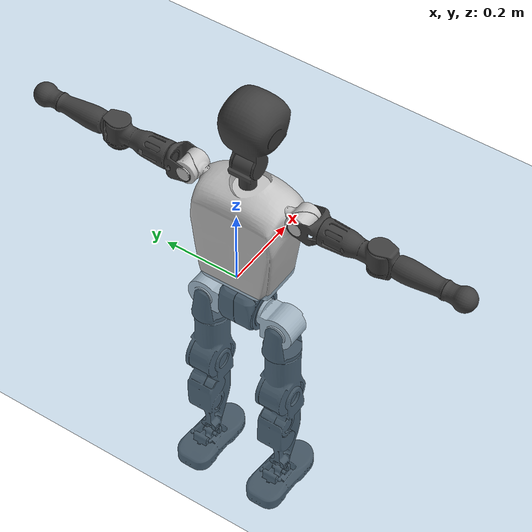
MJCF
<mujoco model="T1">
  <compiler angle="radian" assetdir="assets" balanceinertia="true" inertiafromgeom="false"/>

  <option timestep="0.005" density="1.2" viscosity="2e-05"/>

  <size nkey="1"/>

  <visual>
    <quality shadowsize="8192"/>
    <map shadowclip="0.5"/>
  </visual>

  <default>
    <default class="/">
      <joint armature="0.01" damping="0.01" frictionloss="0.1"/>
      <geom contype="0" conaffinity="0" group="1" solref="-1000 -80"/>
      <site size="0.01 0.005 0.005" group="5"/>
      <general forcelimited="true" biastype="affine" gainprm="25" biasprm="0 -25 -0.6"/>
      <default class="t1">
        <geom rgba="0.25 0.25 0.25 1"/>
        <default class="visual">
          <geom type="mesh" group="2"/>
        </default>
        <default class="collision">
          <geom group="3"/>
        </default>
        <default class="foot">
          <geom size="0.1115 0.05 0.015" type="box" condim="6" group="4" priority="1" solimp="0.015 1 0.015"/>
        </default>
        <default class="reward_collision_sphere">
          <geom group="5" rgba="1 0 0 1"/>
        </default>
      </default>
    </default>
  </default>

  <asset>
    <texture type="skybox" colorspace="auto" name="//unnamed_texture_0" builtin="gradient" rgb1="0.95 0.95 0.95" rgb2="0.95 0.95 0.95" width="100" height="600"/>
    <texture type="2d" colorspace="auto" name="texplane" builtin="checker" rgb1="0.345 0.575 0.748" rgb2="0.345 0.575 0.748" markrgb="1 1 1" width="512" height="512"/>
    <material name="MatPlane" class="/" texture="texplane" texuniform="true" texrepeat="2 2" specular="0.9"/>
    <mesh name="Trunk" class="/" file="Trunk.stl"/>
    <mesh name="H1" class="/" file="H1.stl"/>
    <mesh name="H2" class="/" file="H2.stl"/>
    <mesh name="AL1" class="/" file="AL1.stl"/>
    <mesh name="AL2" class="/" file="AL2.stl"/>
    <mesh name="AL3" class="/" file="AL3.stl"/>
    <mesh name="left_hand_link" class="/" file="left_hand_link.stl"/>
    <mesh name="AR1" class="/" file="AR1.stl"/>
    <mesh name="AR2" class="/" file="AR2.stl"/>
    <mesh name="AR3" class="/" file="AR3.stl"/>
    <mesh name="right_hand_link" class="/" file="right_hand_link.stl"/>
    <mesh name="Waist" class="/" file="Waist.stl"/>
    <mesh name="Hip_Pitch_Left" class="/" file="Hip_Pitch_Left.stl"/>
    <mesh name="Hip_Roll_Left" class="/" file="Hip_Roll_Left.stl"/>
    <mesh name="Hip_Yaw_Left" class="/" file="Hip_Yaw_Left.stl"/>
    <mesh name="Shank_Left" class="/" file="Shank_Left.stl"/>
    <mesh name="Ankle_Cross_Left" class="/" file="Ankle_Cross_Left.stl"/>
    <mesh name="left_foot_link" class="/" file="left_foot_link.stl"/>
    <mesh name="Hip_Pitch_Right" class="/" file="Hip_Pitch_Right.stl"/>
    <mesh name="Hip_Roll_Right" class="/" file="Hip_Roll_Right.stl"/>
    <mesh name="Hip_Yaw_Right" class="/" file="Hip_Yaw_Right.stl"/>
    <mesh name="Shank_Right" class="/" file="Shank_Right.stl"/>
    <mesh name="Ankle_Cross_Right" class="/" file="Ankle_Cross_Right.stl"/>
    <mesh name="right_foot_link" class="/" file="right_foot_link.stl"/>
  </asset>

  <worldbody>
    <geom name="floor" class="/" size="100 100 0.125" type="plane" group="0" material="MatPlane"/>
    <light name="toplight_shadow" class="/" pos="0 0 5" dir="0.0990148 0.0990148 -0.990148" type="directional" ambient="0.04 0.04 0.04" diffuse="0.55 0.55 0.55" specular="0.12 0.12 0.12"/>
    <light name="toplight_fill" class="/" pos="0 0 5" dir="0.0990148 0.0990148 -0.990148" type="directional" castshadow="false" ambient="0.04 0.04 0.04" diffuse="0.3 0.3 0.3" specular="0.08 0.08 0.08"/>
    <body name="trunk" childclass="t1" pos="0.000276935 0.00168421 -0.00270684" quat="0.999999 0.00125427 -0.000408832 8.33631e-05">
      <inertial pos="0.0400864 -0.000417037 0.115611" quat="0.99996 0.000171074 -0.00894718 -7.78001e-05" mass="9.35491" diaginertia="0.0188786 0.0706031 0.0863321"/>
      <joint name="//unnamed_joint_0" type="free" armature="0" damping="0" frictionloss="0"/>
      <geom name="//unnamed_geom_1" class="visual" rgba="0.76 0.76 0.76 1" mesh="Trunk"/>
      <geom name="//unnamed_geom_2" class="collision" size="0.0706042 0.094139 0.141208" pos="0.0441008 0 0.132196" type="box"/>
      <geom name="//unnamed_geom_3" class="reward_collision_sphere" size="0.10826" pos="0.0441008 0 0.110164"/>
      <geom name="//unnamed_geom_4" class="reward_collision_sphere" size="0.0141208" pos="0.0441008 0.0839391 0"/>
      <geom name="//unnamed_geom_5" class="reward_collision_sphere" size="0.0141208" pos="0.0441008 -0.0839391 0"/>
      <geom name="//unnamed_geom_6" class="reward_collision_sphere" size="0.0141208" pos="0.0441008 0.105664 0.198295"/>
      <geom name="//unnamed_geom_7" class="reward_collision_sphere" size="0.0141208" pos="0.0441008 -0.105664 0.198295"/>
      <site name="imu" pos="-0.0135429 0.00174666 -0.000810212" size="0.0094139"/>
      <camera name="track" pos="0 -1.97504 0" quat="0.707107 0.707107 0 0" mode="trackcom"/>
      <camera name="ego_camera" pos="0.0896717 0 0.462687" quat="-0.5 -0.5 0.5 0.5"/>
      <body name="H1" pos="0.0466103 -0.000138521 0.269045" quat="0.999999 0.00029745 0.000777649 -0.00113367">
        <inertial pos="0.000986188 -0.00108528 0.0622787" quat="0.763744 -0.0139997 0.00259231 0.645362" mass="0.373006" diaginertia="5.1771e-05 0.000213972 0.000234304"/>
        <joint name="AAHead_yaw" pos="0 0 0" axis="0.000246336 0.000309721 1" range="-1.62234 1.58752" armature="0.00933515" damping="0.00398904" frictionloss="0.0936001"/>
        <geom name="//unnamed_geom_8" class="visual" mesh="H1"/>
        <body name="H2" pos="0.000187715 -0.00104569 0.0697554" quat="0.999999 -1.68998e-05 -0.00132793 -0.000356432">
          <inertial pos="0.00500051 7.98059e-05 0.108761" quat="0.988461 0.106031 -0.0747301 -0.0782134" mass="0.508286" diaginertia="0.000425084 0.00175463 0.00278805"/>
          <joint name="Head_pitch" pos="0 0 0" axis="-0.0014718 -0.999903 0.0138744" range="-1.26604 0.40405" armature="0.0106738" damping="0.0193581" frictionloss="0.106768"/>
          <geom name="//unnamed_geom_9" class="visual" mesh="H2"/>
          <geom name="//unnamed_geom_10" class="collision" size="0.0753112" pos="0.00735014 0 0.12118"/>
          <geom name="//unnamed_geom_11" class="reward_collision_sphere" size="0.0847251" pos="0.0147003 0 0.110164"/>
        </body>
      </body>
      <body name="AL1" pos="0.045781 0.107196 0.243079" quat="1 7.75037e-05 0.000634466 -0.000218296">
        <inertial pos="-0.00326628 0.0439373 -0.00079346" quat="0.511888 0.487912 -0.503745 0.496139" mass="0.434729" diaginertia="0.000285058 0.00123121 0.000468095"/>
        <joint name="Left_Shoulder_Pitch" pos="0 0 0" axis="0.000304311 1 -0.000481355" stiffness="0.00205322" range="-3.29469 1.22223" armature="0.00963004" damping="0.0142107" frictionloss="0.0937827"/>
        <geom name="//unnamed_geom_12" class="visual" rgba="0.76 0.76 0.76 1" mesh="AL1"/>
        <body name="AL2" pos="-6.54471e-05 0.0484982 -0.00278296" quat="0.999999 -0.000118522 -0.000711904 0.00113465">
          <inertial pos="0.00309485 0.0366915 -0.00281668" quat="0.487869 0.510868 -0.48821 0.512492" mass="0.137987" diaginertia="8.73957e-05 0.000319364 0.0002844"/>
          <joint name="Left_Shoulder_Roll" pos="0 0 0" axis="-0.999922 0.00508481 -0.0113734" range="-1.56741 1.75976" armature="0.00894751" damping="0.00430882" frictionloss="0.081382"/>
          <geom name="//unnamed_geom_13" class="visual" mesh="AL2"/>
          <body name="AL3" pos="-0.00204998 0.0588603 0.00143346" quat="1 0.000147559 0.000352615 0.000109478">
            <inertial pos="0.000759937 0.0842528 0.00246494" quat="0.707384 0.706829 -0.000680257 -0.000514843" mass="0.846919" diaginertia="0.00277374 0.0120256 0.000995704"/>
            <joint name="Left_Elbow_Pitch" pos="0 0 0" axis="0.0133248 -0.999911 0.000182802" range="-2.29294 2.26729" armature="0.00972822" damping="0.00462095" frictionloss="0.0948042"/>
            <geom name="//unnamed_geom_14" class="visual" mesh="AL3"/>
            <geom name="//unnamed_geom_15" class="collision" size="0.0282417 0.0706042" pos="0 0.0493759 0" quat="0.707105 0.707108 0 0" type="cylinder"/>
            <geom name="//unnamed_geom_16" class="reward_collision_sphere" size="0.03389"/>
            <body name="left_hand_link" pos="-0.00135378 0.143036 0.00297164" quat="1 -1.06831e-05 -0.00013016 7.52452e-05">
              <inertial pos="9.96616e-05 0.108737 0.00265415" quat="0.709064 0.705142 0.00179792 0.000630328" mass="0.281295" diaginertia="0.00174769 0.00807047 0.000360579"/>
              <joint name="Left_Elbow_Yaw" pos="0 0 0" axis="0.00705548 -0.0138434 0.999879" range="-2.45783 0.0152825" armature="0.00881492" damping="0.0131647" frictionloss="0.10166"/>
              <geom name="//unnamed_geom_17" class="visual" mesh="left_hand_link"/>
              <geom name="//unnamed_geom_18" class="collision" size="0.0282417 0.0823716" pos="0 0.128377 0" quat="0.707105 0.707108 0 0" type="cylinder"/>
              <geom name="//unnamed_geom_19" class="reward_collision_sphere" size="0.0470695"/>
              <geom name="//unnamed_geom_20" class="reward_collision_sphere" size="0.0329486" pos="0 0.108627 0"/>
              <geom name="//unnamed_geom_21" class="reward_collision_sphere" size="0.0329486" pos="0 0.212317 0"/>
            </body>
          </body>
        </body>
      </body>
      <body name="AR1" pos="0.0442618 -0.10558 0.244009" quat="0.999999 -1.04104e-05 0.00162889 0.000347028">
        <inertial pos="-0.000390461 -0.0451714 -0.00106804" quat="0.505747 0.493527 -0.503839 0.496787" mass="0.441046" diaginertia="0.000285411 0.00121805 0.000475035"/>
        <joint name="Right_Shoulder_Pitch" pos="0 0 0" axis="-0.00183099 -0.999998 0.000267839" range="-1.22531 3.34269" armature="0.00977466" damping="0" frictionloss="0.091927"/>
        <geom name="//unnamed_geom_22" class="visual" rgba="0.76 0.76 0.76 1" mesh="AR1"/>
        <body name="AR2" pos="-0.00058789 -0.0460353 -9.03716e-05" quat="1 -0.000910014 4.17603e-05 -1.00391e-05">
          <inertial pos="0.00272058 -0.037533 0.00238378" quat="0.511032 0.486301 -0.512051 0.490062" mass="0.128846" diaginertia="8.86912e-05 0.000327317 0.000276577"/>
          <joint name="Right_Shoulder_Roll" pos="0 0 0" axis="-0.999961 -0.00421485 0.00774802" range="-1.75728 1.56772" armature="0.00943433" damping="0.00986296" frictionloss="0.106503"/>
          <geom name="//unnamed_geom_23" class="visual" mesh="AR2"/>
          <body name="AR3" pos="-0.00143908 -0.0572303 0.000143451" quat="1 7.48322e-05 -0.000307605 0.000202755">
            <inertial pos="-0.00301385 -0.083773 -0.00103473" quat="0.714165 0.699962 -0.00293533 0.0034504" mass="0.87025" diaginertia="0.00268382 0.0115404 0.00100475"/>
            <joint name="Right_Elbow_Pitch" pos="0 0 0" axis="-0.00259383 0.999991 0.00325615" range="-2.27319 2.24972" armature="0.00821218" damping="0.0033931" frictionloss="0.0958327"/>
            <geom name="//unnamed_geom_24" class="visual" mesh="AR3"/>
            <geom name="//unnamed_geom_25" class="collision" size="0.0282417 0.0706042" pos="0 -0.0493759 0" quat="0.707105 0.707108 0 0" type="cylinder"/>
            <geom name="//unnamed_geom_26" class="reward_collision_sphere" size="0.03389"/>
            <body name="right_hand_link" pos="-0.000422728 -0.145648 0.00264821" quat="1 1.1599e-06 3.20248e-06 1.7363e-06">
              <inertial pos="-0.00197154 -0.105778 0.00166176" quat="0.705685 0.708517 -0.0019489 0.0029385" mass="0.271824" diaginertia="0.00173269 0.00758631 0.000348765"/>
              <joint name="Right_Elbow_Yaw" pos="0 0 0" axis="-0.00433255 0.00319815 0.999986" range="0.00344579 2.44159" armature="0.0096132" damping="0.00756299" frictionloss="0.09478"/>
              <geom name="//unnamed_geom_27" class="visual" mesh="right_hand_link"/>
              <geom name="//unnamed_geom_28" class="collision" size="0.0282417 0.0823716" pos="0 -0.128377 0" quat="0.707105 0.707108 0 0" type="cylinder"/>
              <geom name="//unnamed_geom_29" class="reward_collision_sphere" size="0.0470695"/>
              <geom name="//unnamed_geom_30" class="reward_collision_sphere" size="0.0329486" pos="0 -0.108627 0"/>
              <geom name="//unnamed_geom_31" class="reward_collision_sphere" size="0.0329486" pos="0 -0.212317 0"/>
            </body>
          </body>
        </body>
      </body>
      <body name="Waist" pos="0.0479379 0.000722217 -0.125387" quat="1 -0.000182082 -1.50609e-05 8.38541e-05">
        <inertial pos="0.00310858 0.000206544 0.00825622" quat="0.98325 0.000611384 -0.182257 0.00120415" mass="2.13073" diaginertia="0.0011151 0.005076 0.0074636"/>
        <joint name="Waist" pos="0 0 0" axis="-0.00346696 0.00512894 0.999981" range="-1.61284 1.58773" armature="0.00943476" damping="0" frictionloss="0.095652"/>
        <geom name="//unnamed_geom_32" class="visual" mesh="Waist"/>
        <body name="Hip_Pitch_Left" pos="-0.00017225 0.107261 0.00273585" quat="1 9.79766e-06 -8.34147e-06 -6.87441e-06">
          <inertial pos="-0.000634917 -0.00715681 -0.0227418" quat="0.974438 0.224387 0.0108637 0.00146844" mass="0.882334" diaginertia="0.000395731 0.00137873 0.00201193"/>
          <joint name="Left_Hip_Pitch" pos="0 0 0" axis="0.00118449 0.999996 -0.00270987" range="-1.74966 1.5797" armature="0.00943705" damping="0" frictionloss="0.082192"/>
          <geom name="//unnamed_geom_33" class="visual" rgba="0.76 0.76 0.76 1" mesh="Hip_Pitch_Left"/>
          <body name="Hip_Roll_Left" pos="0.00168439 -0.00102164 -0.0209619" quat="1 -1.76597e-06 -6.77957e-06 -3.84798e-06">
            <inertial pos="5.72285e-05 0.00112416 -0.059587" quat="0.707999 -0.00570255 -0.00723254 0.706154" mass="0.330173" diaginertia="0.000388825 0.00148564 0.00086297"/>
            <joint name="Left_Hip_Roll" pos="0 0 0" axis="-0.999991 0.00394095 -0.00178861" range="-1.5264 0.202653" armature="0.00936702" damping="0.0194662" frictionloss="0.0845659"/>
            <geom name="//unnamed_geom_34" class="visual" mesh="Hip_Roll_Left"/>
            <geom name="//unnamed_geom_35" class="reward_collision_sphere" size="0.0517764"/>
            <body name="Hip_Yaw_Left" pos="-0.000833667 -0.00151605 -0.0879612" quat="1 1.76228e-05 -4.51491e-05 2.60168e-05">
              <inertial pos="-0.00605821 0.000380936 -0.101229" quat="0.696614 -0.0359887 -0.0308405 0.715879" mass="1.77446" diaginertia="0.00572691 0.0236949 0.00422671"/>
              <joint name="Left_Hip_Yaw" pos="0 0 0" axis="0.00784927 0.00302528 -0.999965" range="-1.01502 1.0522" armature="0.00842336" damping="0.00067074" frictionloss="0.0816488"/>
              <geom name="//unnamed_geom_36" class="visual" mesh="Hip_Yaw_Left"/>
              <geom name="//unnamed_geom_37" class="collision" size="0.0470695 0.0753112" type="cylinder"/>
              <body name="Shank_Left" pos="-0.0102113 0.00260585 -0.145623" quat="0.999999 3.98718e-05 -0.000803055 0.00108819">
                <inertial pos="-0.0036352 -0.00215145 -0.136812" quat="0.9969 0.00955925 -0.0329371 0.0708114" mass="1.44835" diaginertia="0.00773715 0.0326803 0.00305771"/>
                <joint name="Left_Knee_Pitch" pos="0 0 0" axis="-0.00253758 0.999945 0.0102133" range="0.0170918 2.34204" armature="0.0103978" damping="0.0156339" frictionloss="0.0815663"/>
                <geom name="//unnamed_geom_38" class="visual" mesh="Shank_Left"/>
                <geom name="//unnamed_geom_39" class="collision" size="0.0470695 0.0706042" pos="0 0 -0.132196" type="cylinder"/>
                <geom name="//unnamed_geom_40" class="reward_collision_sphere" size="0.0611903"/>
                <body name="Ankle_Cross_Left" pos="-0.00296748 -5.01292e-05 -0.30887" quat="1 2.10456e-05 -7.79313e-05 9.26589e-05">
                  <inertial pos="-0.0029942 9.44491e-05 -0.00847622" quat="0.449709 0.556796 0.547528 0.433535" mass="0.0599464" diaginertia="6.23656e-06 2.40449e-05 1.81813e-05"/>
                  <joint name="Left_Ankle_Pitch" pos="0 0 0" axis="0.000778261 0.999986 0.00522817" range="-0.876501 0.296314" armature="0.00932559" damping="0.0126044" frictionloss="0.0924547"/>
                  <geom name="//unnamed_geom_41" class="visual" mesh="Ankle_Cross_Left"/>
                  <body name="left_foot_link" pos="0.00163963 0.000426613 -0.0133605" quat="1 0.000672532 -0.000184631 3.949e-05">
                    <inertial pos="2.31895e-05 2.50248e-05 -0.00740547" quat="-7.22195e-05 0.621552 -7.24289e-05 0.783373" mass="0.562467" diaginertia="0.00056622 0.00224733 0.00352074"/>
                    <joint name="Left_Ankle_Roll" pos="0 0 0" axis="-0.999953 0.00862585 0.00452619" range="-0.482262 0.44716" armature="0.00935421" damping="0.0224658" frictionloss="0.093765"/>
                    <geom name="//unnamed_geom_42" class="visual" mesh="left_foot_link"/>
                    <geom name="left_foot" class="foot" size="0.113437 0.0519276 0.0148721" pos="0.00735014 0 -0.0165245"/>
                    <geom name="//unnamed_geom_44" class="reward_collision_sphere" size="0.0489523" pos="0.00735014 0 -0.0165245"/>
                    <geom name="//unnamed_geom_45" class="reward_collision_sphere" size="0.0282417" pos="0.0698263 -0.0227129 -0.0165245"/>
                    <geom name="//unnamed_geom_46" class="reward_collision_sphere" size="0.0282417" pos="-0.051451 -0.0227129 -0.0165245"/>
                    <site name="left_foot" class="foot" pos="0.00735014 0 -0.0165245" size="0.0094139"/>
                  </body>
                </body>
              </body>
            </body>
          </body>
        </body>
        <body name="Hip_Pitch_Right" pos="-0.00323808 -0.106257 0.00234376" quat="0.999999 3.40511e-05 -0.00102347 -0.000421985">
          <inertial pos="0.000153067 0.00487521 -0.0208464" quat="0.973363 -0.228796 0.0140936 -0.00417309" mass="0.842452" diaginertia="0.000380004 0.00135446 0.00202524"/>
          <joint name="Right_Hip_Pitch" pos="0 0 0" axis="0.000937791 -0.999999 -0.000365235" range="-1.53966 1.74651" armature="0.00926383" damping="0.0147463" frictionloss="0.106824"/>
          <geom name="//unnamed_geom_47" class="visual" rgba="0.76 0.76 0.76 1" mesh="Hip_Pitch_Right"/>
          <body name="Hip_Roll_Right" pos="-0.00307414 0.000314879 -0.0197836" quat="1 -0.000364357 0.00015544 0.000331539">
            <inertial pos="0.00176488 -0.000309657 -0.0585171" quat="0.70684 -0.005271 -0.00588843 0.707329" mass="0.320971" diaginertia="0.000361708 0.00141876 0.00082847"/>
            <joint name="Right_Hip_Roll" pos="0 0 0" axis="-0.999952 0.000328403 -0.0098325" stiffness="0.000225506" range="-0.166041 1.57271" armature="0.00929525" damping="0.00689677" frictionloss="0.105788"/>
            <geom name="//unnamed_geom_48" class="visual" mesh="Hip_Roll_Right"/>
            <geom name="//unnamed_geom_49" class="reward_collision_sphere" size="0.0517764"/>
            <body name="Hip_Yaw_Right" pos="0.00226594 -0.000809444 -0.0881596" quat="1 0.000386764 -3.23412e-05 0.000166476">
              <inertial pos="-0.00721455 0.00225388 -0.0994166" quat="0.713332 -0.0297473 -0.0326841 0.699432" mass="1.7588" diaginertia="0.00552432 0.0228462 0.00407663"/>
              <joint name="Right_Hip_Yaw" pos="0 0 0" axis="-0.000382636 -0.00368342 -0.999993" stiffness="0.00199203" range="-1.01804 1.0041" armature="0.00930462" damping="0.0194604" frictionloss="0.0941451"/>
              <geom name="//unnamed_geom_50" class="visual" mesh="Hip_Yaw_Right"/>
              <geom name="//unnamed_geom_51" class="collision" size="0.0470695 0.0753112" type="cylinder"/>
              <body name="Shank_Right" pos="-0.0083914 -0.000271205 -0.145293" quat="1 0.000219214 0.00017065 -1.05497e-06">
                <inertial pos="-0.00697699 -0.000840454 -0.137055" quat="0.999155 0.00884746 -0.016239 -0.0366947" mass="1.47679" diaginertia="0.00738834 0.0325836 0.0030953"/>
                <joint name="Right_Knee_Pitch" pos="0 0 0" axis="-0.00151721 -0.999995 -0.00278917" range="-2.33993 -0.0559392" armature="0.00958221" damping="0.00801755" frictionloss="0.0850216"/>
                <geom name="//unnamed_geom_52" class="visual" mesh="Shank_Right"/>
                <geom name="//unnamed_geom_53" class="collision" size="0.0470695 0.0706042" pos="0 0 -0.132196" type="cylinder"/>
                <geom name="//unnamed_geom_54" class="reward_collision_sphere" size="0.0611903"/>
                <body name="Ankle_Cross_Right" pos="-0.000583824 -0.00129364 -0.311409" quat="1 4.66118e-05 -0.000116971 -0.000221366">
                  <inertial pos="-0.00324719 -0.00063411 -0.00880182" quat="0.442561 0.554579 0.547066 0.444186" mass="0.0606083" diaginertia="6.28551e-06 2.45826e-05 1.86494e-05"/>
                  <joint name="Right_Ankle_Pitch" pos="0 0 0" axis="-0.00152198 -0.999997 -0.00201448" stiffness="0.00061095" range="-0.300482 0.900627" armature="0.00996311" damping="0.00465069" frictionloss="0.0925895"/>
                  <geom name="//unnamed_geom_55" class="visual" mesh="Ankle_Cross_Right"/>
                  <body name="right_foot_link" pos="0.00165509 6.78507e-05 -0.0122375" quat="1 0.00030341 -3.42439e-05 -0.000102679">
                    <inertial pos="-4.30135e-05 -2.40427e-06 -0.00737969" quat="-0.00221338 0.619815 -0.0038022 0.784736" mass="0.577091" diaginertia="0.000575599 0.00218753 0.0035759"/>
                    <joint name="Right_Ankle_Roll" pos="0 0 0" axis="-0.999999 0.000225199 -0.00097453" range="-0.420316 0.449813" armature="0.00894352" damping="0.00690226" frictionloss="0.106005"/>
                    <geom name="//unnamed_geom_56" class="visual" mesh="right_foot_link"/>
                    <geom name="right_foot" class="foot" size="0.102415 0.0413654 0.0156155" pos="0.00735014 0 -0.0165245"/>
                    <geom name="//unnamed_geom_58" class="reward_collision_sphere" size="0.0376556"/>
                    <geom name="//unnamed_geom_59" class="reward_collision_sphere" size="0.0282417" pos="0.00735014 0 -0.0165245"/>
                    <geom name="//unnamed_geom_60" class="reward_collision_sphere" size="0.0282417" pos="0.0698263 0.0227129 -0.0165245"/>
                    <geom name="//unnamed_geom_61" class="reward_collision_sphere" size="0.0282417" pos="-0.051451 0.0227129 -0.0165245"/>
                    <site name="right_foot" class="foot" pos="0.00735014 0 -0.0165245" size="0.0094139"/>
                  </body>
                </body>
              </body>
            </body>
          </body>
        </body>
      </body>
    </body>
  </worldbody>

  <contact>
    <pair class="/" geom1="floor" geom2="left_foot" name="//unnamed_contact_0"/>
    <pair class="/" geom1="floor" geom2="right_foot" name="//unnamed_contact_1"/>
  </contact>

  <actuator>
    <general name="AAHead_yaw" class="/" joint="AAHead_yaw" forcerange="-6.53005 6.53005" gainprm="24.9137" biasprm="0 -24.9137 -0.554357"/>
    <general name="Head_pitch" class="/" joint="Head_pitch" forcerange="-6.69741 6.69741" gainprm="24.9137" biasprm="0 -24.9137 -0.554357"/>
    <general name="Left_Shoulder_Pitch" class="/" joint="Left_Shoulder_Pitch" forcerange="-16.6593 16.6593" gainprm="24.9137" biasprm="0 -24.9137 -0.554357"/>
    <general name="Left_Shoulder_Roll" class="/" joint="Left_Shoulder_Roll" forcerange="-16.2655 16.2655" gainprm="24.9137" biasprm="0 -24.9137 -0.554357"/>
    <general name="Left_Elbow_Pitch" class="/" joint="Left_Elbow_Pitch" forcerange="-15.4031 15.4031" gainprm="24.9137" biasprm="0 -24.9137 -0.554357"/>
    <general name="Left_Elbow_Yaw" class="/" joint="Left_Elbow_Yaw" forcerange="-17.1356 17.1356" gainprm="24.9137" biasprm="0 -24.9137 -0.554357"/>
    <general name="Right_Shoulder_Pitch" class="/" joint="Right_Shoulder_Pitch" forcerange="-16.3213 16.3213" gainprm="24.9137" biasprm="0 -24.9137 -0.554357"/>
    <general name="Right_Shoulder_Roll" class="/" joint="Right_Shoulder_Roll" forcerange="-17.8406 17.8406" gainprm="24.9137" biasprm="0 -24.9137 -0.554357"/>
    <general name="Right_Elbow_Pitch" class="/" joint="Right_Elbow_Pitch" forcerange="-17.0685 17.0685" gainprm="24.9137" biasprm="0 -24.9137 -0.554357"/>
    <general name="Right_Elbow_Yaw" class="/" joint="Right_Elbow_Yaw" forcerange="-17.137 17.137" gainprm="24.9137" biasprm="0 -24.9137 -0.554357"/>
    <general name="Waist" class="/" joint="Waist" forcerange="-28.0377 28.0377" gainprm="24.9137" biasprm="0 -24.9137 -0.554357"/>
    <general name="Left_Hip_Pitch" class="/" joint="Left_Hip_Pitch" forcerange="-41.7086 41.7086" gainprm="24.9137" biasprm="0 -24.9137 -0.554357"/>
    <general name="Left_Hip_Roll" class="/" joint="Left_Hip_Roll" forcerange="-31.1044 31.1044" gainprm="24.9137" biasprm="0 -24.9137 -0.554357"/>
    <general name="Left_Hip_Yaw" class="/" joint="Left_Hip_Yaw" forcerange="-26.6997 26.6997" gainprm="24.9137" biasprm="0 -24.9137 -0.554357"/>
    <general name="Left_Knee_Pitch" class="/" joint="Left_Knee_Pitch" forcerange="-61.7433 61.7433" gainprm="24.9137" biasprm="0 -24.9137 -0.554357"/>
    <general name="Left_Ankle_Pitch" class="/" joint="Left_Ankle_Pitch" forcerange="-17.8393 17.8393" gainprm="24.9137" biasprm="0 -24.9137 -0.554357"/>
    <general name="Left_Ankle_Roll" class="/" joint="Left_Ankle_Roll" forcerange="-13.5616 13.5616" gainprm="24.9137" biasprm="0 -24.9137 -0.554357"/>
    <general name="Right_Hip_Pitch" class="/" joint="Right_Hip_Pitch" forcerange="-38.2057 38.2057" gainprm="24.9137" biasprm="0 -24.9137 -0.554357"/>
    <general name="Right_Hip_Roll" class="/" joint="Right_Hip_Roll" forcerange="-28.8082 28.8082" gainprm="24.9137" biasprm="0 -24.9137 -0.554357"/>
    <general name="Right_Hip_Yaw" class="/" joint="Right_Hip_Yaw" forcerange="-30.0739 30.0739" gainprm="24.9137" biasprm="0 -24.9137 -0.554357"/>
    <general name="Right_Knee_Pitch" class="/" joint="Right_Knee_Pitch" forcerange="-55.4786 55.4786" gainprm="24.9137" biasprm="0 -24.9137 -0.554357"/>
    <general name="Right_Ankle_Pitch" class="/" joint="Right_Ankle_Pitch" forcerange="-18.539 18.539" gainprm="24.9137" biasprm="0 -24.9137 -0.554357"/>
    <general name="Right_Ankle_Roll" class="/" joint="Right_Ankle_Roll" forcerange="-14.0484 14.0484" gainprm="24.9137" biasprm="0 -24.9137 -0.554357"/>
  </actuator>

  <sensor>
    <gyro site="imu" name="imu_angular_velocity"/>
    <velocimeter site="imu" name="imu_linear_velocity"/>
    <framelinvel objtype="site" objname="left_foot" name="left_foot_global_linear_velocity"/>
    <framelinvel objtype="site" objname="right_foot" name="right_foot_global_linear_velocity"/>
  </sensor>

  <keyframe>
    <key name="home" qpos="0 0 0.6385 1 0 0 0 0 0 0 1.4 0 -0.4 0 -1.4 0 0.4 0 -0.4 0 0 0.8 -0.4 0 0.4 0 0 -0.8 0.4 0"/>
  </keyframe>
</mujoco>
